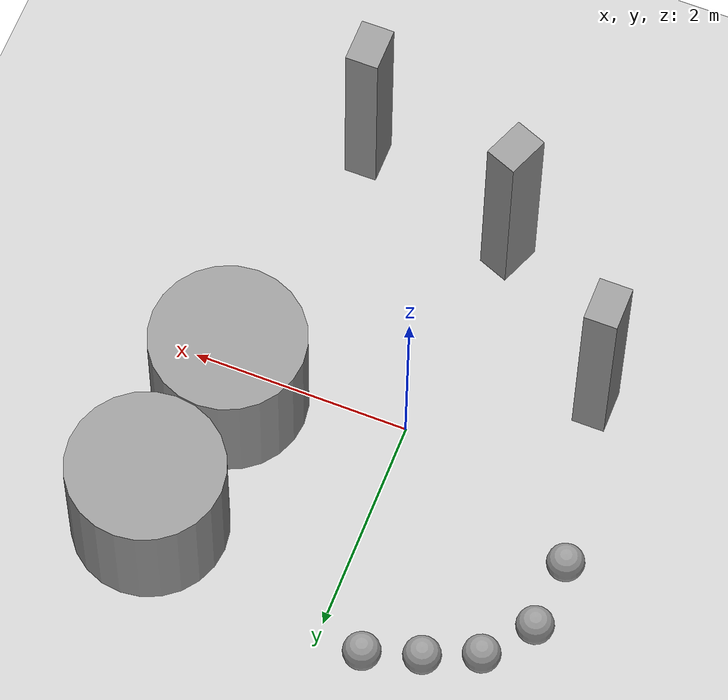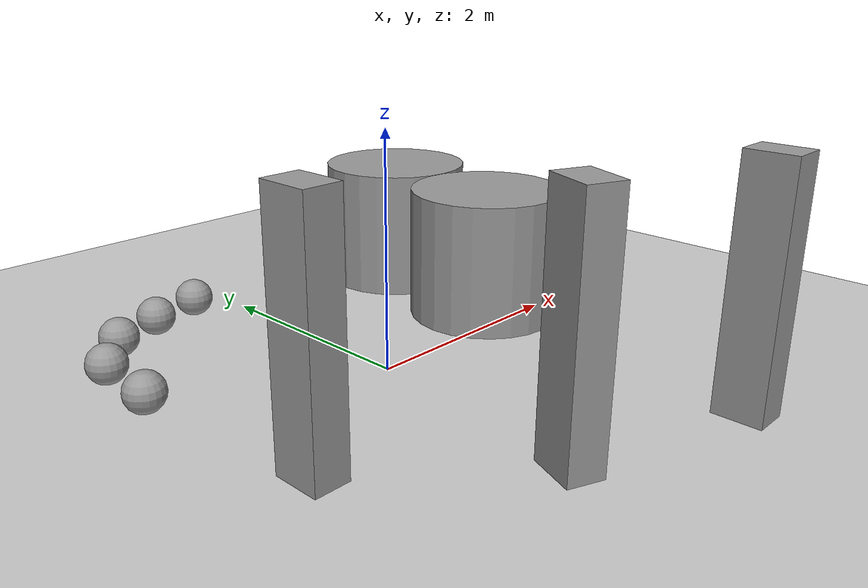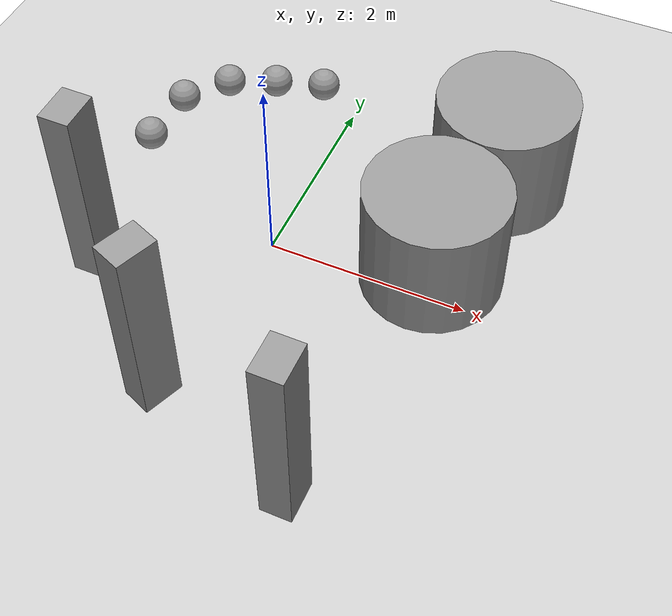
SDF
<sdf version="1.7">
 <world name="default">
  <light name="sun" type="directional">
   <pose>0 0 10 0 -0 0</pose>
   <diffuse>0.8 0.8 0.8 1</diffuse>
   <specular>0.2 0.2 0.2 1</specular>
   <attenuation>
    <range>1000</range>
    <constant>0.9</constant>
    <linear>0.01</linear>
    <quadratic>0.001</quadratic>
   </attenuation>
   <direction>-0.5 0.1 -0.9</direction>
   <spot><inner_angle>0</inner_angle><outer_angle>0</outer_angle><falloff>0</falloff></spot>
  </light>
  <model name="ground_plane">
   <static>1</static>
   <link name="link">
    <collision name="collision">
     <geometry><plane><normal>0 0 1</normal><size>100 100</size></plane></geometry>
     <surface>
      <contact><collide_bitmask>65535</collide_bitmask></contact>
      <friction><ode><mu>100</mu><mu2>50</mu2></ode></friction>
     </surface>
    </collision>
    <visual name="visual">
     <cast_shadows>0</cast_shadows>
     <geometry><plane><normal>0 0 1</normal><size>100 100</size></plane></geometry>
     <material>
      <script><uri>file://media/materials/scripts/gazebo.material</uri><name>Gazebo/Grey</name></script>
     </material>
    </visual>
   </link>
  </model>
  <gravity>0 0 -9.8</gravity>
  <magnetic_field>6e-06 2.3e-05 -4.2e-05</magnetic_field>
  <atmosphere type="adiabatic"/>
  <physics type="ode">
   <max_step_size>0.001</max_step_size>
   <real_time_factor>1</real_time_factor>
   <real_time_update_rate>1000</real_time_update_rate>
  </physics>
  <scene><ambient>0.4 0.4 0.4 1</ambient><background>0.7 0.7 0.7 1</background><shadows>1</shadows></scene>
  <audio><device>default</device></audio>
  <spherical_coordinates>
   <surface_model>EARTH_WGS84</surface_model>
   <latitude_deg>0</latitude_deg>
   <longitude_deg>0</longitude_deg>
   <elevation>0</elevation>
   <heading_deg>0</heading_deg>
  </spherical_coordinates>
  <model name="tall_thin_box">
   <link name="link">
    <inertial>
     <mass>1</mass>
     <inertia>
      <ixx>0.166667</ixx>
      <ixy>0</ixy>
      <ixz>0</ixz>
      <iyy>0.166667</iyy>
      <iyz>0</iyz>
      <izz>0.166667</izz>
     </inertia>
     <pose>0 0 0 0 -0 1.5</pose>
    </inertial>
    <visual name="visual">
     <geometry><box><size>0.3 0.4 2</size></box></geometry>
     <material>
      <script><name>Gazebo/Grey</name><uri>file://media/materials/scripts/gazebo.material</uri></script>
      <shader type="pixel"><normal_map>__default__</normal_map></shader>
      <ambient>0.3 0.3 0.3 1</ambient>
      <diffuse>0.7 0.7 0.7 1</diffuse>
      <specular>0.01 0.01 0.01 1</specular>
      <emissive>0 0 0 1</emissive>
     </material>
    </visual>
    <collision name="collision">
     <geometry><box><size>0.3 0.4 2</size></box></geometry>
     <surface>
      <friction>
       <ode><mu>1</mu><mu2>1</mu2><fdir1>0 0 0</fdir1><slip1>0</slip1><slip2>0</slip2></ode>
       <torsional>
        <coefficient>1</coefficient>
        <patch_radius>0</patch_radius>
        <surface_radius>0</surface_radius>
        <use_patch_radius>1</use_patch_radius>
        <ode><slip>0</slip></ode>
       </torsional>
      </friction>
      <bounce><restitution_coefficient>0</restitution_coefficient><threshold>1e+06</threshold></bounce>
      <contact>
       <collide_without_contact>0</collide_without_contact>
       <collide_without_contact_bitmask>1</collide_without_contact_bitmask>
       <collide_bitmask>1</collide_bitmask>
       <ode>
        <soft_cfm>0</soft_cfm>
        <soft_erp>0.2</soft_erp>
        <kp>1e+13</kp>
        <kd>1</kd>
        <max_vel>0.01</max_vel>
        <min_depth>0</min_depth>
       </ode>
       <bullet>
        <split_impulse>1</split_impulse>
        <split_impulse_penetration_threshold>-0.01</split_impulse_penetration_threshold>
        <soft_cfm>0</soft_cfm>
        <soft_erp>0.2</soft_erp>
        <kp>1e+13</kp>
        <kd>1</kd>
       </bullet>
      </contact>
     </surface>
    </collision>
   </link>
   <static>0</static>
   <pose>-1.48225 -0.821466 1 -0 1e-06 -0.00018</pose>
  </model>
  <model name="tall_thin_box_clone">
   <link name="link">
    <inertial>
     <mass>1</mass>
     <inertia>
      <ixx>0.166667</ixx>
      <ixy>0</ixy>
      <ixz>0</ixz>
      <iyy>0.166667</iyy>
      <iyz>0</iyz>
      <izz>0.166667</izz>
     </inertia>
     <pose>0 0 0 0 -0 1.5</pose>
    </inertial>
    <visual name="visual">
     <geometry><box><size>0.3 0.4 2</size></box></geometry>
     <material>
      <script><name>Gazebo/Grey</name><uri>file://media/materials/scripts/gazebo.material</uri></script>
      <shader type="pixel"><normal_map>__default__</normal_map></shader>
      <ambient>0.3 0.3 0.3 1</ambient>
      <diffuse>0.7 0.7 0.7 1</diffuse>
      <specular>0.01 0.01 0.01 1</specular>
      <emissive>0 0 0 1</emissive>
     </material>
    </visual>
    <collision name="collision">
     <geometry><box><size>0.3 0.4 2</size></box></geometry>
     <surface>
      <friction>
       <ode><mu>1</mu><mu2>1</mu2><fdir1>0 0 0</fdir1><slip1>0</slip1><slip2>0</slip2></ode>
       <torsional>
        <coefficient>1</coefficient>
        <patch_radius>0</patch_radius>
        <surface_radius>0</surface_radius>
        <use_patch_radius>1</use_patch_radius>
        <ode><slip>0</slip></ode>
       </torsional>
      </friction>
      <bounce><restitution_coefficient>0</restitution_coefficient><threshold>1e+06</threshold></bounce>
      <contact>
       <collide_without_contact>0</collide_without_contact>
       <collide_without_contact_bitmask>1</collide_without_contact_bitmask>
       <collide_bitmask>1</collide_bitmask>
       <ode>
        <soft_cfm>0</soft_cfm>
        <soft_erp>0.2</soft_erp>
        <kp>1e+13</kp>
        <kd>1</kd>
        <max_vel>0.01</max_vel>
        <min_depth>0</min_depth>
       </ode>
       <bullet>
        <split_impulse>1</split_impulse>
        <split_impulse_penetration_threshold>-0.01</split_impulse_penetration_threshold>
        <soft_cfm>0</soft_cfm>
        <soft_erp>0.2</soft_erp>
        <kp>1e+13</kp>
        <kd>1</kd>
       </bullet>
      </contact>
     </surface>
    </collision>
   </link>
   <static>0</static>
   <pose>-0.227705 -1.95676 1 -1e-06 -1e-06 -0.381319</pose>
  </model>
  <model name="tall_thin_box_clone_0">
   <link name="link">
    <inertial>
     <mass>1</mass>
     <inertia>
      <ixx>0.166667</ixx>
      <ixy>0</ixy>
      <ixz>0</ixz>
      <iyy>0.166667</iyy>
      <iyz>0</iyz>
      <izz>0.166667</izz>
     </inertia>
     <pose>0 0 0 0 -0 1.5</pose>
    </inertial>
    <visual name="visual">
     <geometry><box><size>0.3 0.4 2</size></box></geometry>
     <material>
      <script><name>Gazebo/Grey</name><uri>file://media/materials/scripts/gazebo.material</uri></script>
      <shader type="pixel"><normal_map>__default__</normal_map></shader>
      <ambient>0.3 0.3 0.3 1</ambient>
      <diffuse>0.7 0.7 0.7 1</diffuse>
      <specular>0.01 0.01 0.01 1</specular>
      <emissive>0 0 0 1</emissive>
     </material>
    </visual>
    <collision name="collision">
     <geometry><box><size>0.3 0.4 2</size></box></geometry>
     <surface>
      <friction>
       <ode><mu>1</mu><mu2>1</mu2><fdir1>0 0 0</fdir1><slip1>0</slip1><slip2>0</slip2></ode>
       <torsional>
        <coefficient>1</coefficient>
        <patch_radius>0</patch_radius>
        <surface_radius>0</surface_radius>
        <use_patch_radius>1</use_patch_radius>
        <ode><slip>0</slip></ode>
       </torsional>
      </friction>
      <bounce><restitution_coefficient>0</restitution_coefficient><threshold>1e+06</threshold></bounce>
      <contact>
       <collide_without_contact>0</collide_without_contact>
       <collide_without_contact_bitmask>1</collide_without_contact_bitmask>
       <collide_bitmask>1</collide_bitmask>
       <ode>
        <soft_cfm>0</soft_cfm>
        <soft_erp>0.2</soft_erp>
        <kp>1e+13</kp>
        <kd>1</kd>
        <max_vel>0.01</max_vel>
        <min_depth>0</min_depth>
       </ode>
       <bullet>
        <split_impulse>1</split_impulse>
        <split_impulse_penetration_threshold>-0.01</split_impulse_penetration_threshold>
        <soft_cfm>0</soft_cfm>
        <soft_erp>0.2</soft_erp>
        <kp>1e+13</kp>
        <kd>1</kd>
       </bullet>
      </contact>
     </surface>
    </collision>
   </link>
   <static>0</static>
   <pose>1.3146 -2.44952 1 -1e-06 -0 3.4e-05</pose>
  </model>
  <model name="fat_cylinder">
   <link name="link">
    <inertial>
     <mass>1</mass>
     <inertia><ixx>0.145833</ixx><ixy>0</ixy><ixz>0</ixz><iyy>0.145833</iyy><iyz>0</iyz><izz>0.125</izz></inertia>
    </inertial>
    <visual name="visual">
     <geometry><cylinder><radius>0.7</radius><length>1.2</length></cylinder></geometry>
     <material>
      <script><name>Gazebo/Grey</name><uri>file://media/materials/scripts/gazebo.material</uri></script>
      <shader type="pixel"><normal_map>__default__</normal_map></shader>
      <ambient>0.3 0.3 0.3 1</ambient>
      <diffuse>0.7 0.7 0.7 1</diffuse>
      <specular>0.01 0.01 0.01 1</specular>
      <emissive>0 0 0 1</emissive>
     </material>
    </visual>
    <collision name="collision">
     <geometry><cylinder><radius>0.7</radius><length>1.2</length></cylinder></geometry>
     <surface>
      <friction>
       <ode><mu>1</mu><mu2>1</mu2><fdir1>0 0 0</fdir1><slip1>0</slip1><slip2>0</slip2></ode>
       <torsional>
        <coefficient>1</coefficient>
        <patch_radius>0</patch_radius>
        <surface_radius>0</surface_radius>
        <use_patch_radius>1</use_patch_radius>
        <ode><slip>0</slip></ode>
       </torsional>
      </friction>
      <bounce><restitution_coefficient>0</restitution_coefficient><threshold>1e+06</threshold></bounce>
      <contact>
       <collide_without_contact>0</collide_without_contact>
       <collide_without_contact_bitmask>1</collide_without_contact_bitmask>
       <collide_bitmask>1</collide_bitmask>
       <ode>
        <soft_cfm>0</soft_cfm>
        <soft_erp>0.2</soft_erp>
        <kp>1e+13</kp>
        <kd>1</kd>
        <max_vel>0.01</max_vel>
        <min_depth>0</min_depth>
       </ode>
       <bullet>
        <split_impulse>1</split_impulse>
        <split_impulse_penetration_threshold>-0.01</split_impulse_penetration_threshold>
        <soft_cfm>0</soft_cfm>
        <soft_erp>0.2</soft_erp>
        <kp>1e+13</kp>
        <kd>1</kd>
       </bullet>
      </contact>
     </surface>
    </collision>
   </link>
   <static>0</static>
   <pose>1.56056 0.282558 0.599997 4e-06 3e-06 0.005143</pose>
  </model>
  <model name="fat_cylinder_clone">
   <link name="link">
    <inertial>
     <mass>1</mass>
     <inertia><ixx>0.145833</ixx><ixy>0</ixy><ixz>0</ixz><iyy>0.145833</iyy><iyz>0</iyz><izz>0.125</izz></inertia>
    </inertial>
    <visual name="visual">
     <geometry><cylinder><radius>0.7</radius><length>1.2</length></cylinder></geometry>
     <material>
      <script><name>Gazebo/Grey</name><uri>file://media/materials/scripts/gazebo.material</uri></script>
      <shader type="pixel"><normal_map>__default__</normal_map></shader>
      <ambient>0.3 0.3 0.3 1</ambient>
      <diffuse>0.7 0.7 0.7 1</diffuse>
      <specular>0.01 0.01 0.01 1</specular>
      <emissive>0 0 0 1</emissive>
     </material>
    </visual>
    <collision name="collision">
     <geometry><cylinder><radius>0.7</radius><length>1.2</length></cylinder></geometry>
     <surface>
      <friction>
       <ode><mu>1</mu><mu2>1</mu2><fdir1>0 0 0</fdir1><slip1>0</slip1><slip2>0</slip2></ode>
       <torsional>
        <coefficient>1</coefficient>
        <patch_radius>0</patch_radius>
        <surface_radius>0</surface_radius>
        <use_patch_radius>1</use_patch_radius>
        <ode><slip>0</slip></ode>
       </torsional>
      </friction>
      <bounce><restitution_coefficient>0</restitution_coefficient><threshold>1e+06</threshold></bounce>
      <contact>
       <collide_without_contact>0</collide_without_contact>
       <collide_without_contact_bitmask>1</collide_without_contact_bitmask>
       <collide_bitmask>1</collide_bitmask>
       <ode>
        <soft_cfm>0</soft_cfm>
        <soft_erp>0.2</soft_erp>
        <kp>1e+13</kp>
        <kd>1</kd>
        <max_vel>0.01</max_vel>
        <min_depth>0</min_depth>
       </ode>
       <bullet>
        <split_impulse>1</split_impulse>
        <split_impulse_penetration_threshold>-0.01</split_impulse_penetration_threshold>
        <soft_cfm>0</soft_cfm>
        <soft_erp>0.2</soft_erp>
        <kp>1e+13</kp>
        <kd>1</kd>
       </bullet>
      </contact>
     </surface>
    </collision>
   </link>
   <static>0</static>
   <pose>1.75227 1.66973 0.599997 4e-06 3e-06 0.004475</pose>
  </model>
  <model name="small_ball">
   <link name="link">
    <inertial>
     <mass>1</mass>
     <inertia><ixx>0.1</ixx><ixy>0</ixy><ixz>0</ixz><iyy>0.1</iyy><iyz>0</iyz><izz>0.1</izz></inertia>
    </inertial>
    <visual name="visual">
     <geometry><sphere><radius>0.17</radius></sphere></geometry>
     <material>
      <script><name>Gazebo/Grey</name><uri>file://media/materials/scripts/gazebo.material</uri></script>
      <shader type="pixel"><normal_map>__default__</normal_map></shader>
      <ambient>0.3 0.3 0.3 1</ambient>
      <diffuse>0.7 0.7 0.7 1</diffuse>
      <specular>0.01 0.01 0.01 1</specular>
      <emissive>0 0 0 1</emissive>
     </material>
    </visual>
    <collision name="collision">
     <geometry><sphere><radius>0.17</radius></sphere></geometry>
     <surface>
      <friction>
       <ode><mu>1</mu><mu2>1</mu2><fdir1>0 0 0</fdir1><slip1>0</slip1><slip2>0</slip2></ode>
       <torsional>
        <coefficient>1</coefficient>
        <patch_radius>0</patch_radius>
        <surface_radius>0</surface_radius>
        <use_patch_radius>1</use_patch_radius>
        <ode><slip>0</slip></ode>
       </torsional>
      </friction>
      <bounce><restitution_coefficient>0</restitution_coefficient><threshold>1e+06</threshold></bounce>
      <contact>
       <collide_without_contact>0</collide_without_contact>
       <collide_without_contact_bitmask>1</collide_without_contact_bitmask>
       <collide_bitmask>1</collide_bitmask>
       <ode>
        <soft_cfm>0</soft_cfm>
        <soft_erp>0.2</soft_erp>
        <kp>1e+13</kp>
        <kd>1</kd>
        <max_vel>0.01</max_vel>
        <min_depth>0</min_depth>
       </ode>
       <bullet>
        <split_impulse>1</split_impulse>
        <split_impulse_penetration_threshold>-0.01</split_impulse_penetration_threshold>
        <soft_cfm>0</soft_cfm>
        <soft_erp>0.2</soft_erp>
        <kp>1e+13</kp>
        <kd>1</kd>
       </bullet>
      </contact>
     </surface>
    </collision>
   </link>
   <static>0</static>
   <pose>-0.428716 2.18094 0.17 0 -0 0</pose>
  </model>
  <model name="small_ball_clone">
   <link name="link">
    <inertial>
     <mass>1</mass>
     <inertia><ixx>0.1</ixx><ixy>0</ixy><ixz>0</ixz><iyy>0.1</iyy><iyz>0</iyz><izz>0.1</izz></inertia>
    </inertial>
    <visual name="visual">
     <geometry><sphere><radius>0.17</radius></sphere></geometry>
     <material>
      <script><name>Gazebo/Grey</name><uri>file://media/materials/scripts/gazebo.material</uri></script>
      <shader type="pixel"><normal_map>__default__</normal_map></shader>
      <ambient>0.3 0.3 0.3 1</ambient>
      <diffuse>0.7 0.7 0.7 1</diffuse>
      <specular>0.01 0.01 0.01 1</specular>
      <emissive>0 0 0 1</emissive>
     </material>
    </visual>
    <collision name="collision">
     <geometry><sphere><radius>0.17</radius></sphere></geometry>
     <surface>
      <friction>
       <ode><mu>1</mu><mu2>1</mu2><fdir1>0 0 0</fdir1><slip1>0</slip1><slip2>0</slip2></ode>
       <torsional>
        <coefficient>1</coefficient>
        <patch_radius>0</patch_radius>
        <surface_radius>0</surface_radius>
        <use_patch_radius>1</use_patch_radius>
        <ode><slip>0</slip></ode>
       </torsional>
      </friction>
      <bounce><restitution_coefficient>0</restitution_coefficient><threshold>1e+06</threshold></bounce>
      <contact>
       <collide_without_contact>0</collide_without_contact>
       <collide_without_contact_bitmask>1</collide_without_contact_bitmask>
       <collide_bitmask>1</collide_bitmask>
       <ode>
        <soft_cfm>0</soft_cfm>
        <soft_erp>0.2</soft_erp>
        <kp>1e+13</kp>
        <kd>1</kd>
        <max_vel>0.01</max_vel>
        <min_depth>0</min_depth>
       </ode>
       <bullet>
        <split_impulse>1</split_impulse>
        <split_impulse_penetration_threshold>-0.01</split_impulse_penetration_threshold>
        <soft_cfm>0</soft_cfm>
        <soft_erp>0.2</soft_erp>
        <kp>1e+13</kp>
        <kd>1</kd>
       </bullet>
      </contact>
     </surface>
    </collision>
   </link>
   <static>0</static>
   <pose>-0.923271 2.02617 0.17 0 -0 0</pose>
  </model>
  <model name="small_ball_clone_0">
   <link name="link">
    <inertial>
     <mass>1</mass>
     <inertia><ixx>0.1</ixx><ixy>0</ixy><ixz>0</ixz><iyy>0.1</iyy><iyz>0</iyz><izz>0.1</izz></inertia>
    </inertial>
    <visual name="visual">
     <geometry><sphere><radius>0.17</radius></sphere></geometry>
     <material>
      <script><name>Gazebo/Grey</name><uri>file://media/materials/scripts/gazebo.material</uri></script>
      <shader type="pixel"><normal_map>__default__</normal_map></shader>
      <ambient>0.3 0.3 0.3 1</ambient>
      <diffuse>0.7 0.7 0.7 1</diffuse>
      <specular>0.01 0.01 0.01 1</specular>
      <emissive>0 0 0 1</emissive>
     </material>
    </visual>
    <collision name="collision">
     <geometry><sphere><radius>0.17</radius></sphere></geometry>
     <surface>
      <friction>
       <ode><mu>1</mu><mu2>1</mu2><fdir1>0 0 0</fdir1><slip1>0</slip1><slip2>0</slip2></ode>
       <torsional>
        <coefficient>1</coefficient>
        <patch_radius>0</patch_radius>
        <surface_radius>0</surface_radius>
        <use_patch_radius>1</use_patch_radius>
        <ode><slip>0</slip></ode>
       </torsional>
      </friction>
      <bounce><restitution_coefficient>0</restitution_coefficient><threshold>1e+06</threshold></bounce>
      <contact>
       <collide_without_contact>0</collide_without_contact>
       <collide_without_contact_bitmask>1</collide_without_contact_bitmask>
       <collide_bitmask>1</collide_bitmask>
       <ode>
        <soft_cfm>0</soft_cfm>
        <soft_erp>0.2</soft_erp>
        <kp>1e+13</kp>
        <kd>1</kd>
        <max_vel>0.01</max_vel>
        <min_depth>0</min_depth>
       </ode>
       <bullet>
        <split_impulse>1</split_impulse>
        <split_impulse_penetration_threshold>-0.01</split_impulse_penetration_threshold>
        <soft_cfm>0</soft_cfm>
        <soft_erp>0.2</soft_erp>
        <kp>1e+13</kp>
        <kd>1</kd>
       </bullet>
      </contact>
     </surface>
    </collision>
   </link>
   <static>0</static>
   <pose>-1.39437 1.82746 0.17 0 -0 0</pose>
  </model>
  <model name="small_ball_clone_1">
   <link name="link">
    <inertial>
     <mass>1</mass>
     <inertia><ixx>0.1</ixx><ixy>0</ixy><ixz>0</ixz><iyy>0.1</iyy><iyz>0</iyz><izz>0.1</izz></inertia>
    </inertial>
    <visual name="visual">
     <geometry><sphere><radius>0.17</radius></sphere></geometry>
     <material>
      <script><name>Gazebo/Grey</name><uri>file://media/materials/scripts/gazebo.material</uri></script>
      <shader type="pixel"><normal_map>__default__</normal_map></shader>
      <ambient>0.3 0.3 0.3 1</ambient>
      <diffuse>0.7 0.7 0.7 1</diffuse>
      <specular>0.01 0.01 0.01 1</specular>
      <emissive>0 0 0 1</emissive>
     </material>
    </visual>
    <collision name="collision">
     <geometry><sphere><radius>0.17</radius></sphere></geometry>
     <surface>
      <friction>
       <ode><mu>1</mu><mu2>1</mu2><fdir1>0 0 0</fdir1><slip1>0</slip1><slip2>0</slip2></ode>
       <torsional>
        <coefficient>1</coefficient>
        <patch_radius>0</patch_radius>
        <surface_radius>0</surface_radius>
        <use_patch_radius>1</use_patch_radius>
        <ode><slip>0</slip></ode>
       </torsional>
      </friction>
      <bounce><restitution_coefficient>0</restitution_coefficient><threshold>1e+06</threshold></bounce>
      <contact>
       <collide_without_contact>0</collide_without_contact>
       <collide_without_contact_bitmask>1</collide_without_contact_bitmask>
       <collide_bitmask>1</collide_bitmask>
       <ode>
        <soft_cfm>0</soft_cfm>
        <soft_erp>0.2</soft_erp>
        <kp>1e+13</kp>
        <kd>1</kd>
        <max_vel>0.01</max_vel>
        <min_depth>0</min_depth>
       </ode>
       <bullet>
        <split_impulse>1</split_impulse>
        <split_impulse_penetration_threshold>-0.01</split_impulse_penetration_threshold>
        <soft_cfm>0</soft_cfm>
        <soft_erp>0.2</soft_erp>
        <kp>1e+13</kp>
        <kd>1</kd>
       </bullet>
      </contact>
     </surface>
    </collision>
   </link>
   <static>0</static>
   <pose>-1.72879 1.41074 0.17 0 -0 0</pose>
  </model>
  <model name="small_ball_clone_2">
   <link name="link">
    <inertial>
     <mass>1</mass>
     <inertia><ixx>0.1</ixx><ixy>0</ixy><ixz>0</ixz><iyy>0.1</iyy><iyz>0</iyz><izz>0.1</izz></inertia>
    </inertial>
    <visual name="visual">
     <geometry><sphere><radius>0.17</radius></sphere></geometry>
     <material>
      <script><name>Gazebo/Grey</name><uri>file://media/materials/scripts/gazebo.material</uri></script>
      <shader type="pixel"><normal_map>__default__</normal_map></shader>
      <ambient>0.3 0.3 0.3 1</ambient>
      <diffuse>0.7 0.7 0.7 1</diffuse>
      <specular>0.01 0.01 0.01 1</specular>
      <emissive>0 0 0 1</emissive>
     </material>
    </visual>
    <collision name="collision">
     <geometry><sphere><radius>0.17</radius></sphere></geometry>
     <surface>
      <friction>
       <ode><mu>1</mu><mu2>1</mu2><fdir1>0 0 0</fdir1><slip1>0</slip1><slip2>0</slip2></ode>
       <torsional>
        <coefficient>1</coefficient>
        <patch_radius>0</patch_radius>
        <surface_radius>0</surface_radius>
        <use_patch_radius>1</use_patch_radius>
        <ode><slip>0</slip></ode>
       </torsional>
      </friction>
      <bounce><restitution_coefficient>0</restitution_coefficient><threshold>1e+06</threshold></bounce>
      <contact>
       <collide_without_contact>0</collide_without_contact>
       <collide_without_contact_bitmask>1</collide_without_contact_bitmask>
       <collide_bitmask>1</collide_bitmask>
       <ode>
        <soft_cfm>0</soft_cfm>
        <soft_erp>0.2</soft_erp>
        <kp>1e+13</kp>
        <kd>1</kd>
        <max_vel>0.01</max_vel>
        <min_depth>0</min_depth>
       </ode>
       <bullet>
        <split_impulse>1</split_impulse>
        <split_impulse_penetration_threshold>-0.01</split_impulse_penetration_threshold>
        <soft_cfm>0</soft_cfm>
        <soft_erp>0.2</soft_erp>
        <kp>1e+13</kp>
        <kd>1</kd>
       </bullet>
      </contact>
     </surface>
    </collision>
   </link>
   <static>0</static>
   <pose>-1.77157 0.762073 0.17 0 -0 0</pose>
  </model>
 </world>
</sdf>
